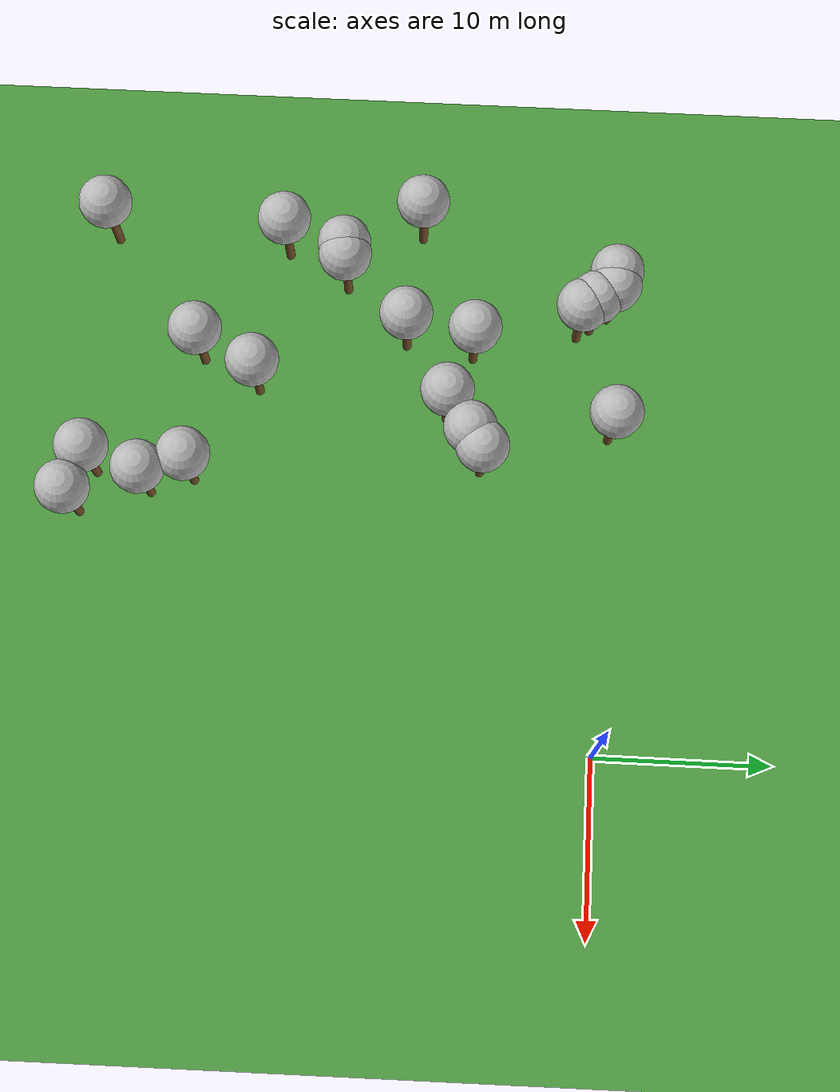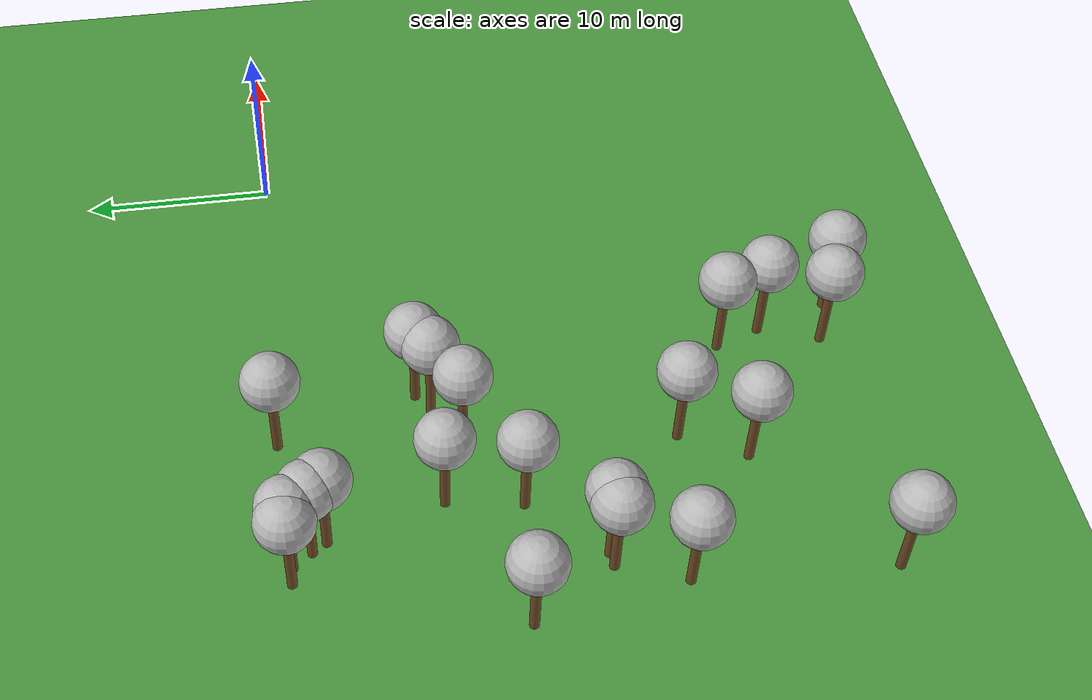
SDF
<sdf version="1.5">
 <world name="default">
  <model name="tree_simple448">
   <static>1</static>
   <link name="link">
    <pose>0 0 0.1 0 -0 0</pose>
    <collision name="collision_trunk">
     <pose>0 0 2 0 -0 0</pose>
     <geometry><cylinder><radius>0.25</radius><length>4</length></cylinder></geometry>
    </collision>
    <collision name="collision_treetop">
     <pose>0 0 5.2 0 -0 0</pose>
     <geometry><sphere><radius>1.5</radius></sphere></geometry>
    </collision>
    <visual name="trunk">
     <pose>0 0 2 0 -0 0</pose>
     <geometry><cylinder><radius>0.25</radius><length>4</length></cylinder></geometry>
     <material>
      <script>
       <uri>model://tree_simple/scripts</uri>
       <uri>model://tree_simple/materials/textures</uri>
       <name>TreeSimple/Trunk</name>
      </script>
     </material>
    </visual>
    <visual name="treetop">
     <pose>0 0 5.2 0 -0 0</pose>
     <geometry><sphere><radius>1.5</radius></sphere></geometry>
     <material>
      <script>
       <uri>model://tree_simple/scripts</uri>
       <uri>model://tree_simple/materials/textures</uri>
       <name>TreeSimple/Treetop</name>
      </script>
     </material>
    </visual>
   </link>
   <pose>-24.5519753109 -1.42546954192 0 0 -0 0</pose>
  </model>
  <model name="tree_simple418">
   <static>1</static>
   <link name="link">
    <pose>0 0 0.1 0 -0 0</pose>
    <collision name="collision_trunk">
     <pose>0 0 2 0 -0 0</pose>
     <geometry><cylinder><radius>0.25</radius><length>4</length></cylinder></geometry>
    </collision>
    <collision name="collision_treetop">
     <pose>0 0 5.2 0 -0 0</pose>
     <geometry><sphere><radius>1.5</radius></sphere></geometry>
    </collision>
    <visual name="trunk">
     <pose>0 0 2 0 -0 0</pose>
     <geometry><cylinder><radius>0.25</radius><length>4</length></cylinder></geometry>
     <material>
      <script>
       <uri>model://tree_simple/scripts</uri>
       <uri>model://tree_simple/materials/textures</uri>
       <name>TreeSimple/Trunk</name>
      </script>
     </material>
    </visual>
    <visual name="treetop">
     <pose>0 0 5.2 0 -0 0</pose>
     <geometry><sphere><radius>1.5</radius></sphere></geometry>
     <material>
      <script>
       <uri>model://tree_simple/scripts</uri>
       <uri>model://tree_simple/materials/textures</uri>
       <name>TreeSimple/Treetop</name>
      </script>
     </material>
    </visual>
   </link>
   <pose>-22.9841604277 -7.39292719752 0 0 -0 0</pose>
  </model>
  <model name="tree_simple395">
   <static>1</static>
   <link name="link">
    <pose>0 0 0.1 0 -0 0</pose>
    <collision name="collision_trunk">
     <pose>0 0 2 0 -0 0</pose>
     <geometry><cylinder><radius>0.25</radius><length>4</length></cylinder></geometry>
    </collision>
    <collision name="collision_treetop">
     <pose>0 0 5.2 0 -0 0</pose>
     <geometry><sphere><radius>1.5</radius></sphere></geometry>
    </collision>
    <visual name="trunk">
     <pose>0 0 2 0 -0 0</pose>
     <geometry><cylinder><radius>0.25</radius><length>4</length></cylinder></geometry>
     <material>
      <script>
       <uri>model://tree_simple/scripts</uri>
       <uri>model://tree_simple/materials/textures</uri>
       <name>TreeSimple/Trunk</name>
      </script>
     </material>
    </visual>
    <visual name="treetop">
     <pose>0 0 5.2 0 -0 0</pose>
     <geometry><sphere><radius>1.5</radius></sphere></geometry>
     <material>
      <script>
       <uri>model://tree_simple/scripts</uri>
       <uri>model://tree_simple/materials/textures</uri>
       <name>TreeSimple/Treetop</name>
      </script>
     </material>
    </visual>
   </link>
   <pose>-14.8909068885 -23.0244241553 0 0 -0 0</pose>
  </model>
  <model name="tree_simple386">
   <static>1</static>
   <link name="link">
    <pose>0 0 0.1 0 -0 0</pose>
    <collision name="collision_trunk">
     <pose>0 0 2 0 -0 0</pose>
     <geometry><cylinder><radius>0.25</radius><length>4</length></cylinder></geometry>
    </collision>
    <collision name="collision_treetop">
     <pose>0 0 5.2 0 -0 0</pose>
     <geometry><sphere><radius>1.5</radius></sphere></geometry>
    </collision>
    <visual name="trunk">
     <pose>0 0 2 0 -0 0</pose>
     <geometry><cylinder><radius>0.25</radius><length>4</length></cylinder></geometry>
     <material>
      <script>
       <uri>model://tree_simple/scripts</uri>
       <uri>model://tree_simple/materials/textures</uri>
       <name>TreeSimple/Trunk</name>
      </script>
     </material>
    </visual>
    <visual name="treetop">
     <pose>0 0 5.2 0 -0 0</pose>
     <geometry><sphere><radius>1.5</radius></sphere></geometry>
     <material>
      <script>
       <uri>model://tree_simple/scripts</uri>
       <uri>model://tree_simple/materials/textures</uri>
       <name>TreeSimple/Treetop</name>
      </script>
     </material>
    </visual>
   </link>
   <pose>-19.2490777258 -8.77456979873 0 0 -0 0</pose>
  </model>
  <model name="tree_simple371">
   <static>1</static>
   <link name="link">
    <pose>0 0 0.1 0 -0 0</pose>
    <collision name="collision_trunk">
     <pose>0 0 2 0 -0 0</pose>
     <geometry><cylinder><radius>0.25</radius><length>4</length></cylinder></geometry>
    </collision>
    <collision name="collision_treetop">
     <pose>0 0 5.2 0 -0 0</pose>
     <geometry><sphere><radius>1.5</radius></sphere></geometry>
    </collision>
    <visual name="trunk">
     <pose>0 0 2 0 -0 0</pose>
     <geometry><cylinder><radius>0.25</radius><length>4</length></cylinder></geometry>
     <material>
      <script>
       <uri>model://tree_simple/scripts</uri>
       <uri>model://tree_simple/materials/textures</uri>
       <name>TreeSimple/Trunk</name>
      </script>
     </material>
    </visual>
    <visual name="treetop">
     <pose>0 0 5.2 0 -0 0</pose>
     <geometry><sphere><radius>1.5</radius></sphere></geometry>
     <material>
      <script>
       <uri>model://tree_simple/scripts</uri>
       <uri>model://tree_simple/materials/textures</uri>
       <name>TreeSimple/Treetop</name>
      </script>
     </material>
    </visual>
   </link>
   <pose>-15.0952400949 -28.608477139 0 0 -0 0</pose>
  </model>
  <model name="tree_simple349">
   <static>1</static>
   <link name="link">
    <pose>0 0 0.1 0 -0 0</pose>
    <collision name="collision_trunk">
     <pose>0 0 2 0 -0 0</pose>
     <geometry><cylinder><radius>0.25</radius><length>4</length></cylinder></geometry>
    </collision>
    <collision name="collision_treetop">
     <pose>0 0 5.2 0 -0 0</pose>
     <geometry><sphere><radius>1.5</radius></sphere></geometry>
    </collision>
    <visual name="trunk">
     <pose>0 0 2 0 -0 0</pose>
     <geometry><cylinder><radius>0.25</radius><length>4</length></cylinder></geometry>
     <material>
      <script>
       <uri>model://tree_simple/scripts</uri>
       <uri>model://tree_simple/materials/textures</uri>
       <name>TreeSimple/Trunk</name>
      </script>
     </material>
    </visual>
    <visual name="treetop">
     <pose>0 0 5.2 0 -0 0</pose>
     <geometry><sphere><radius>1.5</radius></sphere></geometry>
     <material>
      <script>
       <uri>model://tree_simple/scripts</uri>
       <uri>model://tree_simple/materials/textures</uri>
       <name>TreeSimple/Treetop</name>
      </script>
     </material>
    </visual>
   </link>
   <pose>-20.4686708935 -19.6389151122 0 0 -0 0</pose>
  </model>
  <model name="tree_simple284">
   <static>1</static>
   <link name="link">
    <pose>0 0 0.1 0 -0 0</pose>
    <collision name="collision_trunk">
     <pose>0 0 2 0 -0 0</pose>
     <geometry><cylinder><radius>0.25</radius><length>4</length></cylinder></geometry>
    </collision>
    <collision name="collision_treetop">
     <pose>0 0 5.2 0 -0 0</pose>
     <geometry><sphere><radius>1.5</radius></sphere></geometry>
    </collision>
    <visual name="trunk">
     <pose>0 0 2 0 -0 0</pose>
     <geometry><cylinder><radius>0.25</radius><length>4</length></cylinder></geometry>
     <material>
      <script>
       <uri>model://tree_simple/scripts</uri>
       <uri>model://tree_simple/materials/textures</uri>
       <name>TreeSimple/Trunk</name>
      </script>
     </material>
    </visual>
    <visual name="treetop">
     <pose>0 0 5.2 0 -0 0</pose>
     <geometry><sphere><radius>1.5</radius></sphere></geometry>
     <material>
      <script>
       <uri>model://tree_simple/scripts</uri>
       <uri>model://tree_simple/materials/textures</uri>
       <name>TreeSimple/Treetop</name>
      </script>
     </material>
    </visual>
   </link>
   <pose>-18.3910783374 0.559962709575 0 0 -0 0</pose>
  </model>
  <model name="tree_simple279">
   <static>1</static>
   <link name="link">
    <pose>0 0 0.1 0 -0 0</pose>
    <collision name="collision_trunk">
     <pose>0 0 2 0 -0 0</pose>
     <geometry><cylinder><radius>0.25</radius><length>4</length></cylinder></geometry>
    </collision>
    <collision name="collision_treetop">
     <pose>0 0 5.2 0 -0 0</pose>
     <geometry><sphere><radius>1.5</radius></sphere></geometry>
    </collision>
    <visual name="trunk">
     <pose>0 0 2 0 -0 0</pose>
     <geometry><cylinder><radius>0.25</radius><length>4</length></cylinder></geometry>
     <material>
      <script>
       <uri>model://tree_simple/scripts</uri>
       <uri>model://tree_simple/materials/textures</uri>
       <name>TreeSimple/Trunk</name>
      </script>
     </material>
    </visual>
    <visual name="treetop">
     <pose>0 0 5.2 0 -0 0</pose>
     <geometry><sphere><radius>1.5</radius></sphere></geometry>
     <material>
      <script>
       <uri>model://tree_simple/scripts</uri>
       <uri>model://tree_simple/materials/textures</uri>
       <name>TreeSimple/Treetop</name>
      </script>
     </material>
    </visual>
   </link>
   <pose>-25.0449823603 -0.682470499347 0 0 -0 0</pose>
  </model>
  <model name="tree_simple276">
   <static>1</static>
   <link name="link">
    <pose>0 0 0.1 0 -0 0</pose>
    <collision name="collision_trunk">
     <pose>0 0 2 0 -0 0</pose>
     <geometry><cylinder><radius>0.25</radius><length>4</length></cylinder></geometry>
    </collision>
    <collision name="collision_treetop">
     <pose>0 0 5.2 0 -0 0</pose>
     <geometry><sphere><radius>1.5</radius></sphere></geometry>
    </collision>
    <visual name="trunk">
     <pose>0 0 2 0 -0 0</pose>
     <geometry><cylinder><radius>0.25</radius><length>4</length></cylinder></geometry>
     <material>
      <script>
       <uri>model://tree_simple/scripts</uri>
       <uri>model://tree_simple/materials/textures</uri>
       <name>TreeSimple/Trunk</name>
      </script>
     </material>
    </visual>
    <visual name="treetop">
     <pose>0 0 5.2 0 -0 0</pose>
     <geometry><sphere><radius>1.5</radius></sphere></geometry>
     <material>
      <script>
       <uri>model://tree_simple/scripts</uri>
       <uri>model://tree_simple/materials/textures</uri>
       <name>TreeSimple/Treetop</name>
      </script>
     </material>
    </visual>
   </link>
   <pose>-29.5152065305 -28.5569261037 0 0 -0 0</pose>
  </model>
  <model name="tree_simple272">
   <static>1</static>
   <link name="link">
    <pose>0 0 0.1 0 -0 0</pose>
    <collision name="collision_trunk">
     <pose>0 0 2 0 -0 0</pose>
     <geometry><cylinder><radius>0.25</radius><length>4</length></cylinder></geometry>
    </collision>
    <collision name="collision_treetop">
     <pose>0 0 5.2 0 -0 0</pose>
     <geometry><sphere><radius>1.5</radius></sphere></geometry>
    </collision>
    <visual name="trunk">
     <pose>0 0 2 0 -0 0</pose>
     <geometry><cylinder><radius>0.25</radius><length>4</length></cylinder></geometry>
     <material>
      <script>
       <uri>model://tree_simple/scripts</uri>
       <uri>model://tree_simple/materials/textures</uri>
       <name>TreeSimple/Trunk</name>
      </script>
     </material>
    </visual>
    <visual name="treetop">
     <pose>0 0 5.2 0 -0 0</pose>
     <geometry><sphere><radius>1.5</radius></sphere></geometry>
     <material>
      <script>
       <uri>model://tree_simple/scripts</uri>
       <uri>model://tree_simple/materials/textures</uri>
       <name>TreeSimple/Treetop</name>
      </script>
     </material>
    </visual>
   </link>
   <pose>-28.9961141051 -18.3973115949 0 0 -0 0</pose>
  </model>
  <model name="tree_simple245">
   <static>1</static>
   <link name="link">
    <pose>0 0 0.1 0 -0 0</pose>
    <collision name="collision_trunk">
     <pose>0 0 2 0 -0 0</pose>
     <geometry><cylinder><radius>0.25</radius><length>4</length></cylinder></geometry>
    </collision>
    <collision name="collision_treetop">
     <pose>0 0 5.2 0 -0 0</pose>
     <geometry><sphere><radius>1.5</radius></sphere></geometry>
    </collision>
    <visual name="trunk">
     <pose>0 0 2 0 -0 0</pose>
     <geometry><cylinder><radius>0.25</radius><length>4</length></cylinder></geometry>
     <material>
      <script>
       <uri>model://tree_simple/scripts</uri>
       <uri>model://tree_simple/materials/textures</uri>
       <name>TreeSimple/Trunk</name>
      </script>
     </material>
    </visual>
    <visual name="treetop">
     <pose>0 0 5.2 0 -0 0</pose>
     <geometry><sphere><radius>1.5</radius></sphere></geometry>
     <material>
      <script>
       <uri>model://tree_simple/scripts</uri>
       <uri>model://tree_simple/materials/textures</uri>
       <name>TreeSimple/Treetop</name>
      </script>
     </material>
    </visual>
   </link>
   <pose>-25.7973722527 0.315231770046 0 0 -0 0</pose>
  </model>
  <model name="tree_simple201">
   <static>1</static>
   <link name="link">
    <pose>0 0 0.1 0 -0 0</pose>
    <collision name="collision_trunk">
     <pose>0 0 2 0 -0 0</pose>
     <geometry><cylinder><radius>0.25</radius><length>4</length></cylinder></geometry>
    </collision>
    <collision name="collision_treetop">
     <pose>0 0 5.2 0 -0 0</pose>
     <geometry><sphere><radius>1.5</radius></sphere></geometry>
    </collision>
    <visual name="trunk">
     <pose>0 0 2 0 -0 0</pose>
     <geometry><cylinder><radius>0.25</radius><length>4</length></cylinder></geometry>
     <material>
      <script>
       <uri>model://tree_simple/scripts</uri>
       <uri>model://tree_simple/materials/textures</uri>
       <name>TreeSimple/Trunk</name>
      </script>
     </material>
    </visual>
    <visual name="treetop">
     <pose>0 0 5.2 0 -0 0</pose>
     <geometry><sphere><radius>1.5</radius></sphere></geometry>
     <material>
      <script>
       <uri>model://tree_simple/scripts</uri>
       <uri>model://tree_simple/materials/textures</uri>
       <name>TreeSimple/Treetop</name>
      </script>
     </material>
    </visual>
   </link>
   <pose>-16.1062713361 -6.72563548396 0 0 -0 0</pose>
  </model>
  <model name="tree_simple200">
   <static>1</static>
   <link name="link">
    <pose>0 0 0.1 0 -0 0</pose>
    <collision name="collision_trunk">
     <pose>0 0 2 0 -0 0</pose>
     <geometry><cylinder><radius>0.25</radius><length>4</length></cylinder></geometry>
    </collision>
    <collision name="collision_treetop">
     <pose>0 0 5.2 0 -0 0</pose>
     <geometry><sphere><radius>1.5</radius></sphere></geometry>
    </collision>
    <visual name="trunk">
     <pose>0 0 2 0 -0 0</pose>
     <geometry><cylinder><radius>0.25</radius><length>4</length></cylinder></geometry>
     <material>
      <script>
       <uri>model://tree_simple/scripts</uri>
       <uri>model://tree_simple/materials/textures</uri>
       <name>TreeSimple/Trunk</name>
      </script>
     </material>
    </visual>
    <visual name="treetop">
     <pose>0 0 5.2 0 -0 0</pose>
     <geometry><sphere><radius>1.5</radius></sphere></geometry>
     <material>
      <script>
       <uri>model://tree_simple/scripts</uri>
       <uri>model://tree_simple/materials/textures</uri>
       <name>TreeSimple/Treetop</name>
      </script>
     </material>
    </visual>
   </link>
   <pose>-22.1853775811 -22.9371972628 0 0 -0 0</pose>
  </model>
  <model name="tree_simple194">
   <static>1</static>
   <link name="link">
    <pose>0 0 0.1 0 -0 0</pose>
    <collision name="collision_trunk">
     <pose>0 0 2 0 -0 0</pose>
     <geometry><cylinder><radius>0.25</radius><length>4</length></cylinder></geometry>
    </collision>
    <collision name="collision_treetop">
     <pose>0 0 5.2 0 -0 0</pose>
     <geometry><sphere><radius>1.5</radius></sphere></geometry>
    </collision>
    <visual name="trunk">
     <pose>0 0 2 0 -0 0</pose>
     <geometry><cylinder><radius>0.25</radius><length>4</length></cylinder></geometry>
     <material>
      <script>
       <uri>model://tree_simple/scripts</uri>
       <uri>model://tree_simple/materials/textures</uri>
       <name>TreeSimple/Trunk</name>
      </script>
     </material>
    </visual>
    <visual name="treetop">
     <pose>0 0 5.2 0 -0 0</pose>
     <geometry><sphere><radius>1.5</radius></sphere></geometry>
     <material>
      <script>
       <uri>model://tree_simple/scripts</uri>
       <uri>model://tree_simple/materials/textures</uri>
       <name>TreeSimple/Treetop</name>
      </script>
     </material>
    </visual>
   </link>
   <pose>-23.6189562951 -11.2622665902 0 0 -0 0</pose>
  </model>
  <model name="tree_simple152">
   <static>1</static>
   <link name="link">
    <pose>0 0 0.1 0 -0 0</pose>
    <collision name="collision_trunk">
     <pose>0 0 2 0 -0 0</pose>
     <geometry><cylinder><radius>0.25</radius><length>4</length></cylinder></geometry>
    </collision>
    <collision name="collision_treetop">
     <pose>0 0 5.2 0 -0 0</pose>
     <geometry><sphere><radius>1.5</radius></sphere></geometry>
    </collision>
    <visual name="trunk">
     <pose>0 0 2 0 -0 0</pose>
     <geometry><cylinder><radius>0.25</radius><length>4</length></cylinder></geometry>
     <material>
      <script>
       <uri>model://tree_simple/scripts</uri>
       <uri>model://tree_simple/materials/textures</uri>
       <name>TreeSimple/Trunk</name>
      </script>
     </material>
    </visual>
    <visual name="treetop">
     <pose>0 0 5.2 0 -0 0</pose>
     <geometry><sphere><radius>1.5</radius></sphere></geometry>
     <material>
      <script>
       <uri>model://tree_simple/scripts</uri>
       <uri>model://tree_simple/materials/textures</uri>
       <name>TreeSimple/Treetop</name>
      </script>
     </material>
    </visual>
   </link>
   <pose>-12.7268570034 -29.4125065477 0 0 -0 0</pose>
  </model>
  <model name="tree_simple149">
   <static>1</static>
   <link name="link">
    <pose>0 0 0.1 0 -0 0</pose>
    <collision name="collision_trunk">
     <pose>0 0 2 0 -0 0</pose>
     <geometry><cylinder><radius>0.25</radius><length>4</length></cylinder></geometry>
    </collision>
    <collision name="collision_treetop">
     <pose>0 0 5.2 0 -0 0</pose>
     <geometry><sphere><radius>1.5</radius></sphere></geometry>
    </collision>
    <visual name="trunk">
     <pose>0 0 2 0 -0 0</pose>
     <geometry><cylinder><radius>0.25</radius><length>4</length></cylinder></geometry>
     <material>
      <script>
       <uri>model://tree_simple/scripts</uri>
       <uri>model://tree_simple/materials/textures</uri>
       <name>TreeSimple/Trunk</name>
      </script>
     </material>
    </visual>
    <visual name="treetop">
     <pose>0 0 5.2 0 -0 0</pose>
     <geometry><sphere><radius>1.5</radius></sphere></geometry>
     <material>
      <script>
       <uri>model://tree_simple/scripts</uri>
       <uri>model://tree_simple/materials/textures</uri>
       <name>TreeSimple/Treetop</name>
      </script>
     </material>
    </visual>
   </link>
   <pose>-30.3771264781 -10.615045033 0 0 -0 0</pose>
  </model>
  <model name="tree_simple121">
   <static>1</static>
   <link name="link">
    <pose>0 0 0.1 0 -0 0</pose>
    <collision name="collision_trunk">
     <pose>0 0 2 0 -0 0</pose>
     <geometry><cylinder><radius>0.25</radius><length>4</length></cylinder></geometry>
    </collision>
    <collision name="collision_treetop">
     <pose>0 0 5.2 0 -0 0</pose>
     <geometry><sphere><radius>1.5</radius></sphere></geometry>
    </collision>
    <visual name="trunk">
     <pose>0 0 2 0 -0 0</pose>
     <geometry><cylinder><radius>0.25</radius><length>4</length></cylinder></geometry>
     <material>
      <script>
       <uri>model://tree_simple/scripts</uri>
       <uri>model://tree_simple/materials/textures</uri>
       <name>TreeSimple/Trunk</name>
      </script>
     </material>
    </visual>
    <visual name="treetop">
     <pose>0 0 5.2 0 -0 0</pose>
     <geometry><sphere><radius>1.5</radius></sphere></geometry>
     <material>
      <script>
       <uri>model://tree_simple/scripts</uri>
       <uri>model://tree_simple/materials/textures</uri>
       <name>TreeSimple/Treetop</name>
      </script>
     </material>
    </visual>
   </link>
   <pose>-26.6760124136 0.407106369334 0 0 -0 0</pose>
  </model>
  <model name="tree_simple89">
   <static>1</static>
   <link name="link">
    <pose>0 0 0.1 0 -0 0</pose>
    <collision name="collision_trunk">
     <pose>0 0 2 0 -0 0</pose>
     <geometry><cylinder><radius>0.25</radius><length>4</length></cylinder></geometry>
    </collision>
    <collision name="collision_treetop">
     <pose>0 0 5.2 0 -0 0</pose>
     <geometry><sphere><radius>1.5</radius></sphere></geometry>
    </collision>
    <visual name="trunk">
     <pose>0 0 2 0 -0 0</pose>
     <geometry><cylinder><radius>0.25</radius><length>4</length></cylinder></geometry>
     <material>
      <script>
       <uri>model://tree_simple/scripts</uri>
       <uri>model://tree_simple/materials/textures</uri>
       <name>TreeSimple/Trunk</name>
      </script>
     </material>
    </visual>
    <visual name="treetop">
     <pose>0 0 5.2 0 -0 0</pose>
     <geometry><sphere><radius>1.5</radius></sphere></geometry>
     <material>
      <script>
       <uri>model://tree_simple/scripts</uri>
       <uri>model://tree_simple/materials/textures</uri>
       <name>TreeSimple/Treetop</name>
      </script>
     </material>
    </visual>
   </link>
   <pose>-14.0445145291 -25.4354437198 0 0 -0 0</pose>
  </model>
  <model name="tree_simple76">
   <static>1</static>
   <link name="link">
    <pose>0 0 0.1 0 -0 0</pose>
    <collision name="collision_trunk">
     <pose>0 0 2 0 -0 0</pose>
     <geometry><cylinder><radius>0.25</radius><length>4</length></cylinder></geometry>
    </collision>
    <collision name="collision_treetop">
     <pose>0 0 5.2 0 -0 0</pose>
     <geometry><sphere><radius>1.5</radius></sphere></geometry>
    </collision>
    <visual name="trunk">
     <pose>0 0 2 0 -0 0</pose>
     <geometry><cylinder><radius>0.25</radius><length>4</length></cylinder></geometry>
     <material>
      <script>
       <uri>model://tree_simple/scripts</uri>
       <uri>model://tree_simple/materials/textures</uri>
       <name>TreeSimple/Trunk</name>
      </script>
     </material>
    </visual>
    <visual name="treetop">
     <pose>0 0 5.2 0 -0 0</pose>
     <geometry><sphere><radius>1.5</radius></sphere></geometry>
     <material>
      <script>
       <uri>model://tree_simple/scripts</uri>
       <uri>model://tree_simple/materials/textures</uri>
       <name>TreeSimple/Treetop</name>
      </script>
     </material>
    </visual>
   </link>
   <pose>-27.7086729522 -14.9466841588 0 0 -0 0</pose>
  </model>
  <model name="tree_simple37">
   <static>1</static>
   <link name="link">
    <pose>0 0 0.1 0 -0 0</pose>
    <collision name="collision_trunk">
     <pose>0 0 2 0 -0 0</pose>
     <geometry><cylinder><radius>0.25</radius><length>4</length></cylinder></geometry>
    </collision>
    <collision name="collision_treetop">
     <pose>0 0 5.2 0 -0 0</pose>
     <geometry><sphere><radius>1.5</radius></sphere></geometry>
    </collision>
    <visual name="trunk">
     <pose>0 0 2 0 -0 0</pose>
     <geometry><cylinder><radius>0.25</radius><length>4</length></cylinder></geometry>
     <material>
      <script>
       <uri>model://tree_simple/scripts</uri>
       <uri>model://tree_simple/materials/textures</uri>
       <name>TreeSimple/Trunk</name>
      </script>
     </material>
    </visual>
    <visual name="treetop">
     <pose>0 0 5.2 0 -0 0</pose>
     <geometry><sphere><radius>1.5</radius></sphere></geometry>
     <material>
      <script>
       <uri>model://tree_simple/scripts</uri>
       <uri>model://tree_simple/materials/textures</uri>
       <name>TreeSimple/Treetop</name>
      </script>
     </material>
    </visual>
   </link>
   <pose>-17.1200971999 -7.42377639458 0 0 -0 0</pose>
  </model>
  <model name="tree_simple14">
   <static>1</static>
   <link name="link">
    <pose>0 0 0.1 0 -0 0</pose>
    <collision name="collision_trunk">
     <pose>0 0 2 0 -0 0</pose>
     <geometry><cylinder><radius>0.25</radius><length>4</length></cylinder></geometry>
    </collision>
    <collision name="collision_treetop">
     <pose>0 0 5.2 0 -0 0</pose>
     <geometry><sphere><radius>1.5</radius></sphere></geometry>
    </collision>
    <visual name="trunk">
     <pose>0 0 2 0 -0 0</pose>
     <geometry><cylinder><radius>0.25</radius><length>4</length></cylinder></geometry>
     <material>
      <script>
       <uri>model://tree_simple/scripts</uri>
       <uri>model://tree_simple/materials/textures</uri>
       <name>TreeSimple/Trunk</name>
      </script>
     </material>
    </visual>
    <visual name="treetop">
     <pose>0 0 5.2 0 -0 0</pose>
     <geometry><sphere><radius>1.5</radius></sphere></geometry>
     <material>
      <script>
       <uri>model://tree_simple/scripts</uri>
       <uri>model://tree_simple/materials/textures</uri>
       <name>TreeSimple/Treetop</name>
      </script>
     </material>
    </visual>
   </link>
   <pose>-26.972464012 -14.858879135 0 0 -0 0</pose>
  </model>
  <model name="ground_plane">
   <static>true</static>
   <link name="link">
    <collision name="collision">
     <geometry><plane><normal>0 0 1</normal><size>250 250</size></plane></geometry>
     <surface><friction><ode><mu>1</mu><mu2>1</mu2></ode></friction></surface>
    </collision>
    <visual name="grass">
     <cast_shadows>false</cast_shadows>
     <geometry><plane><normal>0 0 1</normal><size>150 250</size></plane></geometry>
     <material>
      <script><uri>file://media/materials/scripts/Gazebo.material</uri><name>Gazebo/Grass</name></script>
     </material>
    </visual>
   </link>
  </model>
 </world>
</sdf>
